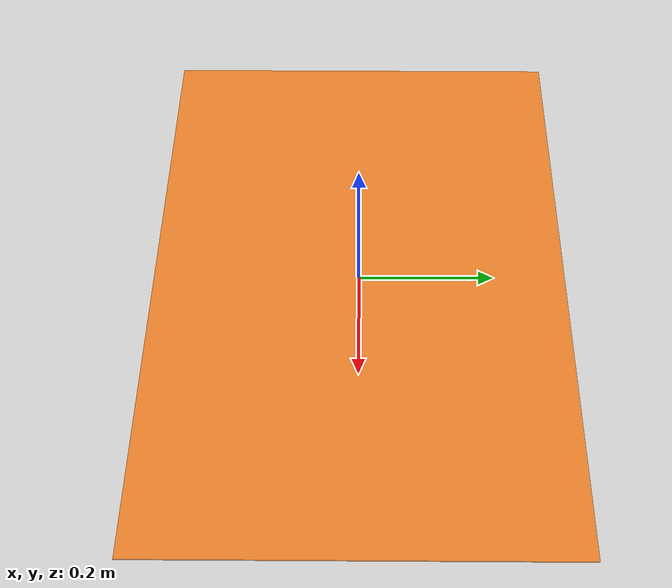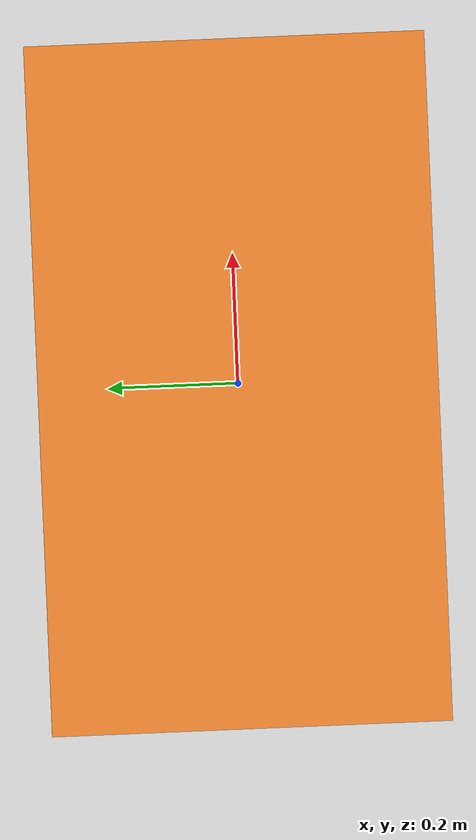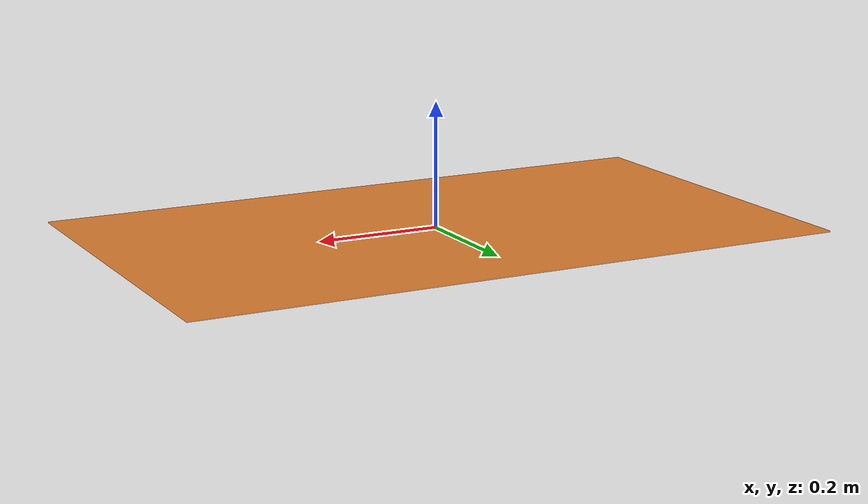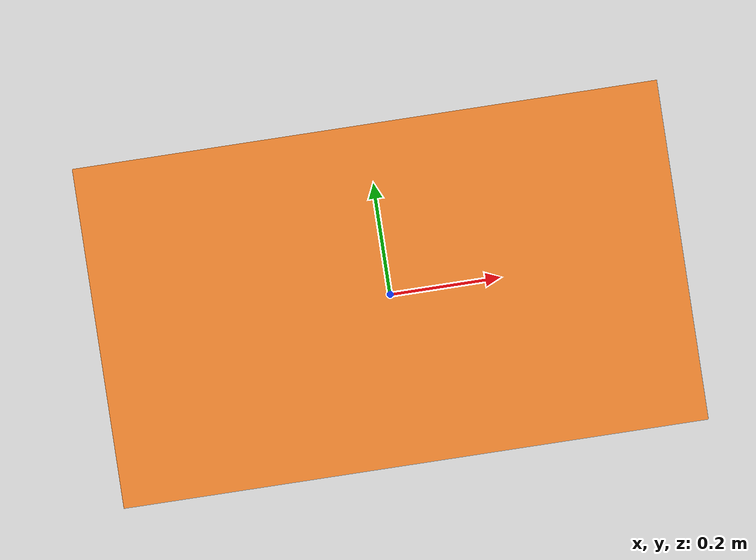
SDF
<?xml version="1.0" ?>
<sdf version="1.6">
  <model name="OrangeDropZone">
    <static>true</static>

    <link name="orange_drop_zone_link">
      <visual name="orange_floor_marking">
        <pose>0 0 0.001 0 0 0</pose>
        <geometry>
          <box>
            <size>1.060 0.615 0.002</size>
          </box>
        </geometry>
        <material>
          <ambient>1.0 0.35 0.0 0.75</ambient>
          <diffuse>1.0 0.45 0.0 0.75</diffuse>
          <specular>0.0 0.0 0.0 1.0</specular>
        </material>
      </visual>
    </link>
  </model>
</sdf>
